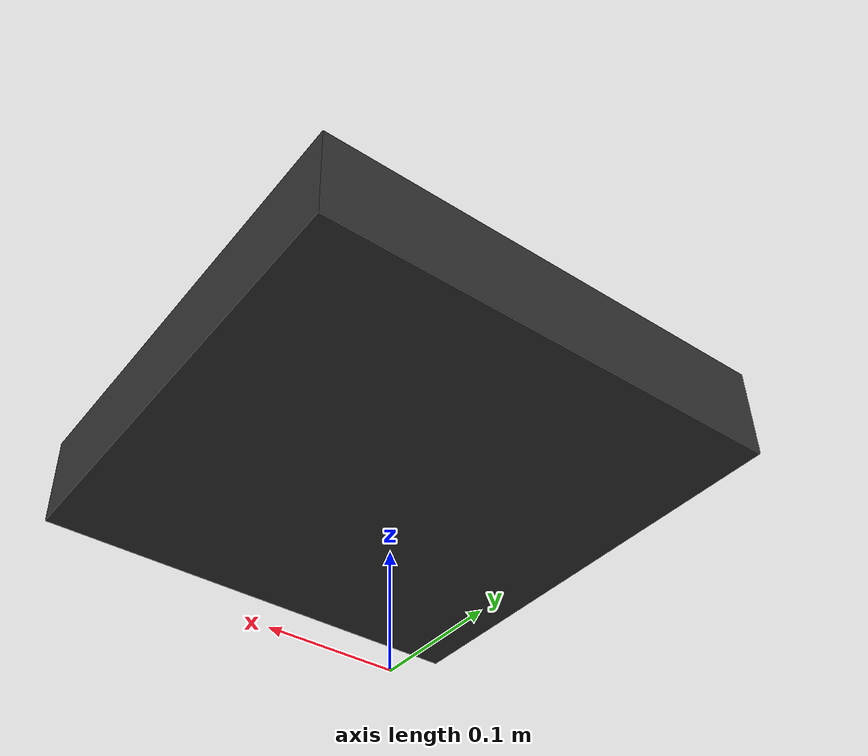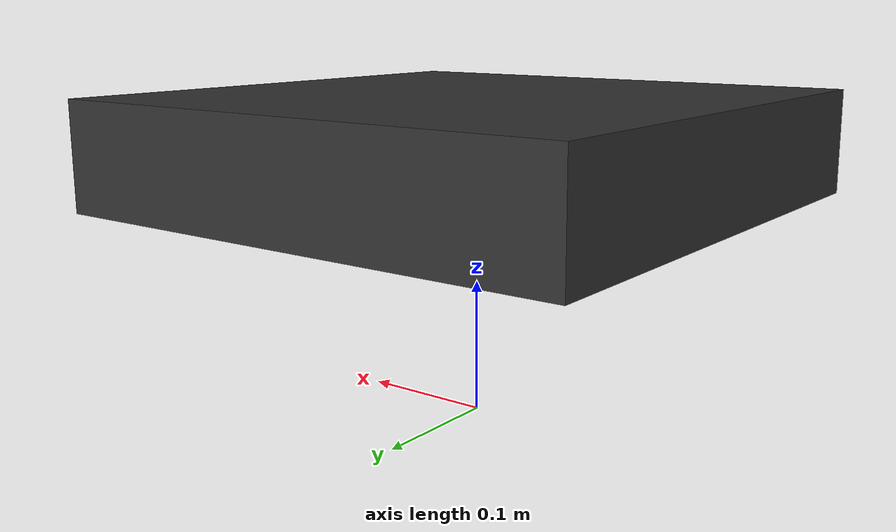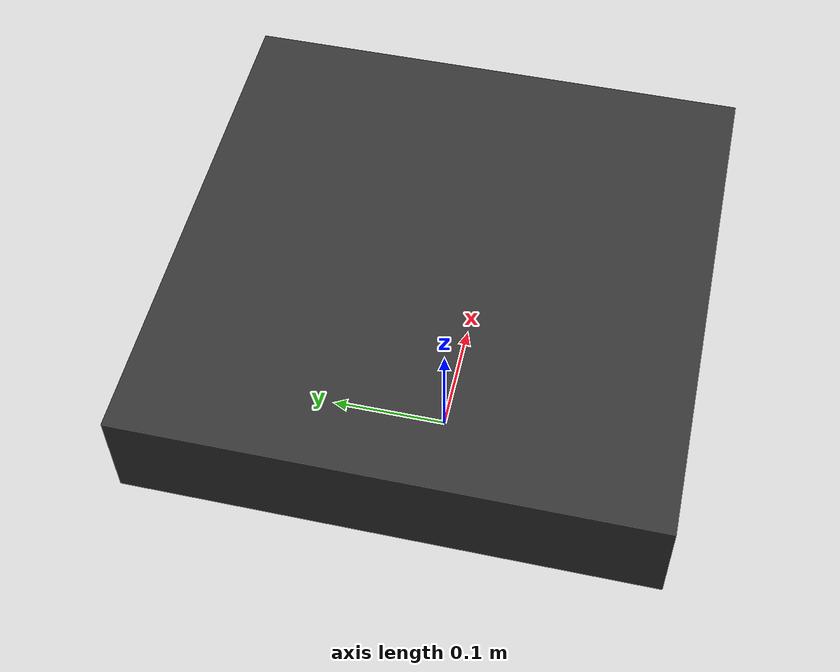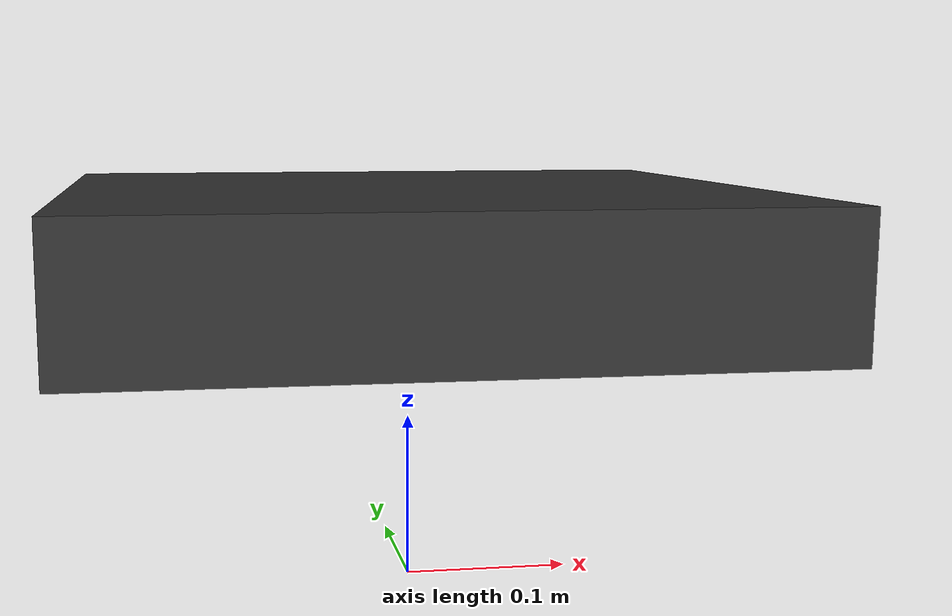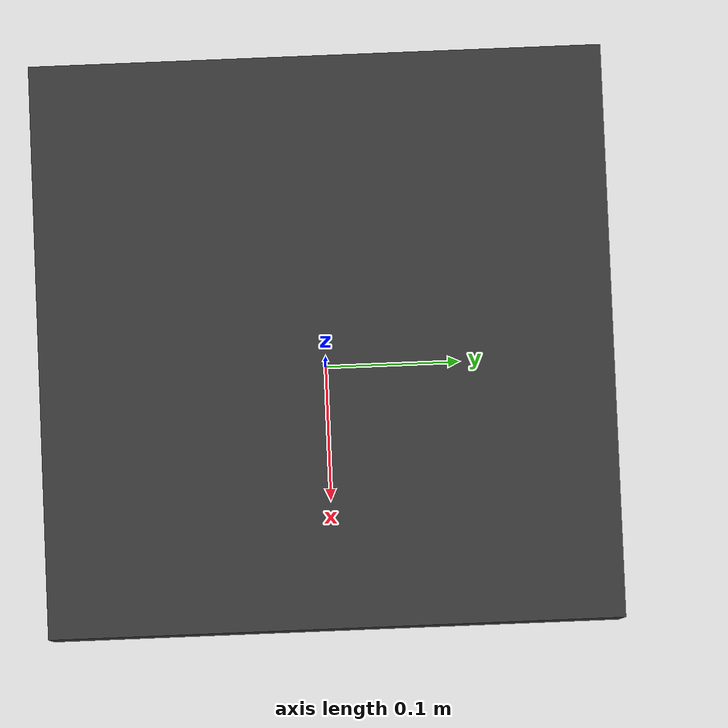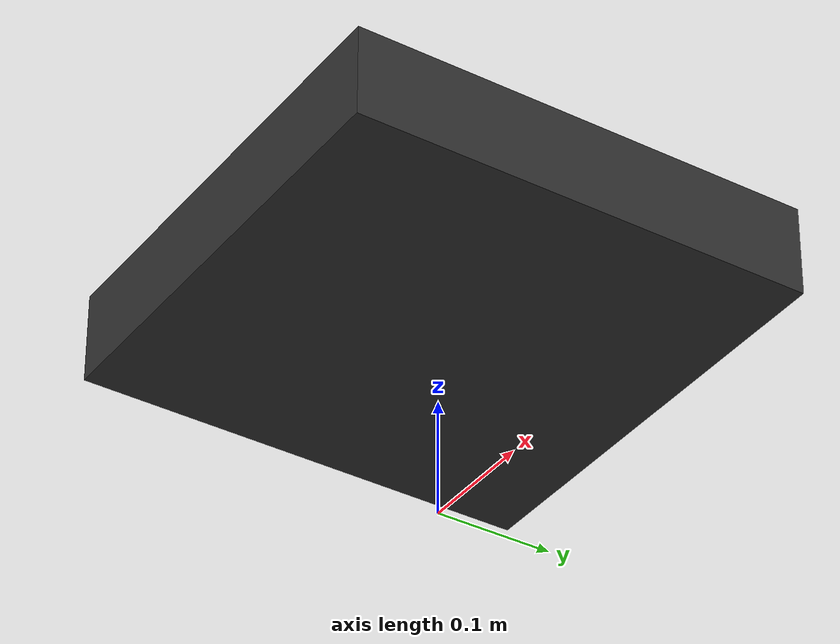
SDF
<?xml version="1.0" ?>
<sdf version="1.6">
  <model name="my_drone">
    <static>false</static>

    <!-- Simple drone body -->
    <link name="base_link">
      <pose>0 0 0.2 0 0 0</pose>
      <inertial>
        <mass>1.0</mass>
        <inertia>
          <ixx>0.01</ixx><iyy>0.01</iyy><izz>0.02</izz>
          <ixy>0</ixy><ixz>0</ixz><iyz>0</iyz>
        </inertia>
      </inertial>
      <visual name="body_vis">
        <geometry><box><size>0.4 0.4 0.08</size></box></geometry>
        <material><ambient>0.2 0.2 0.2 1</ambient></material>
      </visual>
      <collision name="body_col">
        <geometry><box><size>0.4 0.4 0.08</size></box></geometry>
      </collision>

      <!-- Camera sensor -->
      <sensor name="front_camera" type="camera">
        <pose>0.1 0 0 0 0 0</pose>
        <always_on>true</always_on>
        <update_rate>30</update_rate>
        <camera>
          <horizontal_fov>1.0472</horizontal_fov>
          <image><width>640</width><height>480</height><format>R8G8B8</format></image>
          <clip><near>0.05</near><far>50</far></clip>
        </camera>
        <!-- ROS1 Gazebo Classic plugin; remove if using ROS2 + Ignition -->
        <plugin name="gazebo_ros_camera" filename="libgazebo_ros_camera.so">
          <robotNamespace>/</robotNamespace>
          <cameraName>front</cameraName>
          <frameName>camera_optical_frame</frameName>
          <imageTopicName>image_raw</imageTopicName>
          <cameraInfoTopicName>camera_info</cameraInfoTopicName>
          <updateRate>30.0</updateRate>
        </plugin>
      </sensor>
    </link>
  </model>
</sdf>
